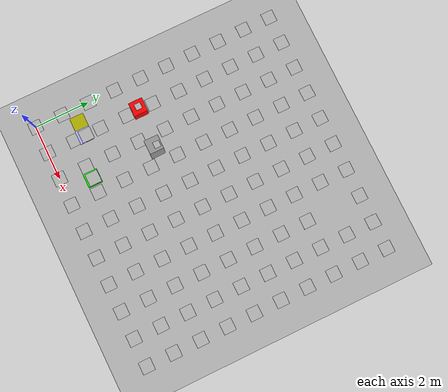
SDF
<sdf version="1.7">
 <world name="default">
  <light name="sun" type="directional">
   <pose>0 0 10 0 -0 0</pose>
   <diffuse>0.8 0.8 0.8 1</diffuse>
   <specular>0.2 0.2 0.2 1</specular>
   <attenuation>
    <range>1000</range>
    <constant>0.9</constant>
    <linear>0.01</linear>
    <quadratic>0.001</quadratic>
   </attenuation>
   <direction>-0.5 0.1 -0.9</direction>
   <spot><inner_angle>0</inner_angle><outer_angle>0</outer_angle><falloff>0</falloff></spot>
  </light>
  <model name="parquet_plane">
   <static>1</static>
   <link name="link">
    <collision name="collision"><geometry><box><size>200 200 0.02</size></box></geometry></collision>
    <visual name="visual">
     <cast_shadows>0</cast_shadows>
     <geometry><box><size>200 200 0.02</size></box></geometry>
     <material>
      <script>
       <uri>model://parquet_plane/materials/scripts</uri>
       <uri>model://parquet_plane/materials/textures</uri>
       <name>parquet</name>
      </script>
     </material>
    </visual>
   </link>
   <pose>0 0 -0.01 0 -0 0</pose>
  </model>
  <model name="aruco_2_99">
   <static>1</static>
   <link name="aruco_2_99_link">
    <visual name="visual_marker_2_0">
     <pose>0 9 0 0 -0 1.5708</pose>
     <cast_shadows>0</cast_shadows>
     <geometry><box><size>0.44 0.44 0.001</size></box></geometry>
     <material>
      <script>
       <uri>model://aruco_cmit_txt/materials/scripts</uri>
       <uri>model://aruco_cmit_txt/materials/textures</uri>
       <name>aruco/marker_2_0</name>
      </script>
     </material>
    </visual>
    <visual name="visual_marker_2_1">
     <pose>1 9 0 0 -0 1.5708</pose>
     <cast_shadows>0</cast_shadows>
     <geometry><box><size>0.44 0.44 0.001</size></box></geometry>
     <material>
      <script>
       <uri>model://aruco_cmit_txt/materials/scripts</uri>
       <uri>model://aruco_cmit_txt/materials/textures</uri>
       <name>aruco/marker_2_1</name>
      </script>
     </material>
    </visual>
    <visual name="visual_marker_2_2">
     <pose>2 9 0 0 -0 1.5708</pose>
     <cast_shadows>0</cast_shadows>
     <geometry><box><size>0.44 0.44 0.001</size></box></geometry>
     <material>
      <script>
       <uri>model://aruco_cmit_txt/materials/scripts</uri>
       <uri>model://aruco_cmit_txt/materials/textures</uri>
       <name>aruco/marker_2_2</name>
      </script>
     </material>
    </visual>
    <visual name="visual_marker_2_3">
     <pose>3 9 0 0 -0 1.5708</pose>
     <cast_shadows>0</cast_shadows>
     <geometry><box><size>0.44 0.44 0.001</size></box></geometry>
     <material>
      <script>
       <uri>model://aruco_cmit_txt/materials/scripts</uri>
       <uri>model://aruco_cmit_txt/materials/textures</uri>
       <name>aruco/marker_2_3</name>
      </script>
     </material>
    </visual>
    <visual name="visual_marker_2_4">
     <pose>4 9 0 0 -0 1.5708</pose>
     <cast_shadows>0</cast_shadows>
     <geometry><box><size>0.44 0.44 0.001</size></box></geometry>
     <material>
      <script>
       <uri>model://aruco_cmit_txt/materials/scripts</uri>
       <uri>model://aruco_cmit_txt/materials/textures</uri>
       <name>aruco/marker_2_4</name>
      </script>
     </material>
    </visual>
    <visual name="visual_marker_2_5">
     <pose>5 9 0 0 -0 1.5708</pose>
     <cast_shadows>0</cast_shadows>
     <geometry><box><size>0.44 0.44 0.001</size></box></geometry>
     <material>
      <script>
       <uri>model://aruco_cmit_txt/materials/scripts</uri>
       <uri>model://aruco_cmit_txt/materials/textures</uri>
       <name>aruco/marker_2_5</name>
      </script>
     </material>
    </visual>
    <visual name="visual_marker_2_6">
     <pose>6 9 0 0 -0 1.5708</pose>
     <cast_shadows>0</cast_shadows>
     <geometry><box><size>0.44 0.44 0.001</size></box></geometry>
     <material>
      <script>
       <uri>model://aruco_cmit_txt/materials/scripts</uri>
       <uri>model://aruco_cmit_txt/materials/textures</uri>
       <name>aruco/marker_2_6</name>
      </script>
     </material>
    </visual>
    <visual name="visual_marker_2_7">
     <pose>7 9 0 0 -0 1.5708</pose>
     <cast_shadows>0</cast_shadows>
     <geometry><box><size>0.44 0.44 0.001</size></box></geometry>
     <material>
      <script>
       <uri>model://aruco_cmit_txt/materials/scripts</uri>
       <uri>model://aruco_cmit_txt/materials/textures</uri>
       <name>aruco/marker_2_7</name>
      </script>
     </material>
    </visual>
    <visual name="visual_marker_2_8">
     <pose>8 9 0 0 -0 1.5708</pose>
     <cast_shadows>0</cast_shadows>
     <geometry><box><size>0.44 0.44 0.001</size></box></geometry>
     <material>
      <script>
       <uri>model://aruco_cmit_txt/materials/scripts</uri>
       <uri>model://aruco_cmit_txt/materials/textures</uri>
       <name>aruco/marker_2_8</name>
      </script>
     </material>
    </visual>
    <visual name="visual_marker_2_9">
     <pose>9 9 0 0 -0 1.5708</pose>
     <cast_shadows>0</cast_shadows>
     <geometry><box><size>0.44 0.44 0.001</size></box></geometry>
     <material>
      <script>
       <uri>model://aruco_cmit_txt/materials/scripts</uri>
       <uri>model://aruco_cmit_txt/materials/textures</uri>
       <name>aruco/marker_2_9</name>
      </script>
     </material>
    </visual>
    <visual name="visual_marker_2_10">
     <pose>0 8 0 0 -0 1.5708</pose>
     <cast_shadows>0</cast_shadows>
     <geometry><box><size>0.44 0.44 0.001</size></box></geometry>
     <material>
      <script>
       <uri>model://aruco_cmit_txt/materials/scripts</uri>
       <uri>model://aruco_cmit_txt/materials/textures</uri>
       <name>aruco/marker_2_10</name>
      </script>
     </material>
    </visual>
    <visual name="visual_marker_2_11">
     <pose>1 8 0 0 -0 1.5708</pose>
     <cast_shadows>0</cast_shadows>
     <geometry><box><size>0.44 0.44 0.001</size></box></geometry>
     <material>
      <script>
       <uri>model://aruco_cmit_txt/materials/scripts</uri>
       <uri>model://aruco_cmit_txt/materials/textures</uri>
       <name>aruco/marker_2_11</name>
      </script>
     </material>
    </visual>
    <visual name="visual_marker_2_12">
     <pose>2 8 0 0 -0 1.5708</pose>
     <cast_shadows>0</cast_shadows>
     <geometry><box><size>0.44 0.44 0.001</size></box></geometry>
     <material>
      <script>
       <uri>model://aruco_cmit_txt/materials/scripts</uri>
       <uri>model://aruco_cmit_txt/materials/textures</uri>
       <name>aruco/marker_2_12</name>
      </script>
     </material>
    </visual>
    <visual name="visual_marker_2_13">
     <pose>3 8 0 0 -0 1.5708</pose>
     <cast_shadows>0</cast_shadows>
     <geometry><box><size>0.44 0.44 0.001</size></box></geometry>
     <material>
      <script>
       <uri>model://aruco_cmit_txt/materials/scripts</uri>
       <uri>model://aruco_cmit_txt/materials/textures</uri>
       <name>aruco/marker_2_13</name>
      </script>
     </material>
    </visual>
    <visual name="visual_marker_2_14">
     <pose>4 8 0 0 -0 1.5708</pose>
     <cast_shadows>0</cast_shadows>
     <geometry><box><size>0.44 0.44 0.001</size></box></geometry>
     <material>
      <script>
       <uri>model://aruco_cmit_txt/materials/scripts</uri>
       <uri>model://aruco_cmit_txt/materials/textures</uri>
       <name>aruco/marker_2_14</name>
      </script>
     </material>
    </visual>
    <visual name="visual_marker_2_15">
     <pose>5 8 0 0 -0 1.5708</pose>
     <cast_shadows>0</cast_shadows>
     <geometry><box><size>0.44 0.44 0.001</size></box></geometry>
     <material>
      <script>
       <uri>model://aruco_cmit_txt/materials/scripts</uri>
       <uri>model://aruco_cmit_txt/materials/textures</uri>
       <name>aruco/marker_2_15</name>
      </script>
     </material>
    </visual>
    <visual name="visual_marker_2_16">
     <pose>6 8 0 0 -0 1.5708</pose>
     <cast_shadows>0</cast_shadows>
     <geometry><box><size>0.44 0.44 0.001</size></box></geometry>
     <material>
      <script>
       <uri>model://aruco_cmit_txt/materials/scripts</uri>
       <uri>model://aruco_cmit_txt/materials/textures</uri>
       <name>aruco/marker_2_16</name>
      </script>
     </material>
    </visual>
    <visual name="visual_marker_2_18">
     <pose>8 8 0 0 -0 1.5708</pose>
     <cast_shadows>0</cast_shadows>
     <geometry><box><size>0.44 0.44 0.001</size></box></geometry>
     <material>
      <script>
       <uri>model://aruco_cmit_txt/materials/scripts</uri>
       <uri>model://aruco_cmit_txt/materials/textures</uri>
       <name>aruco/marker_2_18</name>
      </script>
     </material>
    </visual>
    <visual name="visual_marker_2_19">
     <pose>9 8 0 0 -0 1.5708</pose>
     <cast_shadows>0</cast_shadows>
     <geometry><box><size>0.44 0.44 0.001</size></box></geometry>
     <material>
      <script>
       <uri>model://aruco_cmit_txt/materials/scripts</uri>
       <uri>model://aruco_cmit_txt/materials/textures</uri>
       <name>aruco/marker_2_19</name>
      </script>
     </material>
    </visual>
    <visual name="visual_marker_2_20">
     <pose>0 7 0 0 -0 1.5708</pose>
     <cast_shadows>0</cast_shadows>
     <geometry><box><size>0.44 0.44 0.001</size></box></geometry>
     <material>
      <script>
       <uri>model://aruco_cmit_txt/materials/scripts</uri>
       <uri>model://aruco_cmit_txt/materials/textures</uri>
       <name>aruco/marker_2_20</name>
      </script>
     </material>
    </visual>
    <visual name="visual_marker_2_21">
     <pose>1 7 0 0 -0 1.5708</pose>
     <cast_shadows>0</cast_shadows>
     <geometry><box><size>0.44 0.44 0.001</size></box></geometry>
     <material>
      <script>
       <uri>model://aruco_cmit_txt/materials/scripts</uri>
       <uri>model://aruco_cmit_txt/materials/textures</uri>
       <name>aruco/marker_2_21</name>
      </script>
     </material>
    </visual>
    <visual name="visual_marker_2_22">
     <pose>2 7 0 0 -0 1.5708</pose>
     <cast_shadows>0</cast_shadows>
     <geometry><box><size>0.44 0.44 0.001</size></box></geometry>
     <material>
      <script>
       <uri>model://aruco_cmit_txt/materials/scripts</uri>
       <uri>model://aruco_cmit_txt/materials/textures</uri>
       <name>aruco/marker_2_22</name>
      </script>
     </material>
    </visual>
    <visual name="visual_marker_2_23">
     <pose>3 7 0 0 -0 1.5708</pose>
     <cast_shadows>0</cast_shadows>
     <geometry><box><size>0.44 0.44 0.001</size></box></geometry>
     <material>
      <script>
       <uri>model://aruco_cmit_txt/materials/scripts</uri>
       <uri>model://aruco_cmit_txt/materials/textures</uri>
       <name>aruco/marker_2_23</name>
      </script>
     </material>
    </visual>
    <visual name="visual_marker_2_24">
     <pose>4 7 0 0 -0 1.5708</pose>
     <cast_shadows>0</cast_shadows>
     <geometry><box><size>0.44 0.44 0.001</size></box></geometry>
     <material>
      <script>
       <uri>model://aruco_cmit_txt/materials/scripts</uri>
       <uri>model://aruco_cmit_txt/materials/textures</uri>
       <name>aruco/marker_2_24</name>
      </script>
     </material>
    </visual>
    <visual name="visual_marker_2_25">
     <pose>5 7 0 0 -0 1.5708</pose>
     <cast_shadows>0</cast_shadows>
     <geometry><box><size>0.44 0.44 0.001</size></box></geometry>
     <material>
      <script>
       <uri>model://aruco_cmit_txt/materials/scripts</uri>
       <uri>model://aruco_cmit_txt/materials/textures</uri>
       <name>aruco/marker_2_25</name>
      </script>
     </material>
    </visual>
    <visual name="visual_marker_2_26">
     <pose>6 7 0 0 -0 1.5708</pose>
     <cast_shadows>0</cast_shadows>
     <geometry><box><size>0.44 0.44 0.001</size></box></geometry>
     <material>
      <script>
       <uri>model://aruco_cmit_txt/materials/scripts</uri>
       <uri>model://aruco_cmit_txt/materials/textures</uri>
       <name>aruco/marker_2_26</name>
      </script>
     </material>
    </visual>
    <visual name="visual_marker_2_27">
     <pose>7 7 0 0 -0 1.5708</pose>
     <cast_shadows>0</cast_shadows>
     <geometry><box><size>0.44 0.44 0.001</size></box></geometry>
     <material>
      <script>
       <uri>model://aruco_cmit_txt/materials/scripts</uri>
       <uri>model://aruco_cmit_txt/materials/textures</uri>
       <name>aruco/marker_2_27</name>
      </script>
     </material>
    </visual>
    <visual name="visual_marker_2_28">
     <pose>8 7 0 0 -0 1.5708</pose>
     <cast_shadows>0</cast_shadows>
     <geometry><box><size>0.44 0.44 0.001</size></box></geometry>
     <material>
      <script>
       <uri>model://aruco_cmit_txt/materials/scripts</uri>
       <uri>model://aruco_cmit_txt/materials/textures</uri>
       <name>aruco/marker_2_28</name>
      </script>
     </material>
    </visual>
    <visual name="visual_marker_2_29">
     <pose>9 7 0 0 -0 1.5708</pose>
     <cast_shadows>0</cast_shadows>
     <geometry><box><size>0.44 0.44 0.001</size></box></geometry>
     <material>
      <script>
       <uri>model://aruco_cmit_txt/materials/scripts</uri>
       <uri>model://aruco_cmit_txt/materials/textures</uri>
       <name>aruco/marker_2_29</name>
      </script>
     </material>
    </visual>
    <visual name="visual_marker_2_30">
     <pose>0 6 0 0 -0 1.5708</pose>
     <cast_shadows>0</cast_shadows>
     <geometry><box><size>0.44 0.44 0.001</size></box></geometry>
     <material>
      <script>
       <uri>model://aruco_cmit_txt/materials/scripts</uri>
       <uri>model://aruco_cmit_txt/materials/textures</uri>
       <name>aruco/marker_2_30</name>
      </script>
     </material>
    </visual>
    <visual name="visual_marker_2_31">
     <pose>1 6 0 0 -0 1.5708</pose>
     <cast_shadows>0</cast_shadows>
     <geometry><box><size>0.44 0.44 0.001</size></box></geometry>
     <material>
      <script>
       <uri>model://aruco_cmit_txt/materials/scripts</uri>
       <uri>model://aruco_cmit_txt/materials/textures</uri>
       <name>aruco/marker_2_31</name>
      </script>
     </material>
    </visual>
    <visual name="visual_marker_2_32">
     <pose>2 6 0 0 -0 1.5708</pose>
     <cast_shadows>0</cast_shadows>
     <geometry><box><size>0.44 0.44 0.001</size></box></geometry>
     <material>
      <script>
       <uri>model://aruco_cmit_txt/materials/scripts</uri>
       <uri>model://aruco_cmit_txt/materials/textures</uri>
       <name>aruco/marker_2_32</name>
      </script>
     </material>
    </visual>
    <visual name="visual_marker_2_33">
     <pose>3 6 0 0 -0 1.5708</pose>
     <cast_shadows>0</cast_shadows>
     <geometry><box><size>0.44 0.44 0.001</size></box></geometry>
     <material>
      <script>
       <uri>model://aruco_cmit_txt/materials/scripts</uri>
       <uri>model://aruco_cmit_txt/materials/textures</uri>
       <name>aruco/marker_2_33</name>
      </script>
     </material>
    </visual>
    <visual name="visual_marker_2_34">
     <pose>4 6 0 0 -0 1.5708</pose>
     <cast_shadows>0</cast_shadows>
     <geometry><box><size>0.44 0.44 0.001</size></box></geometry>
     <material>
      <script>
       <uri>model://aruco_cmit_txt/materials/scripts</uri>
       <uri>model://aruco_cmit_txt/materials/textures</uri>
       <name>aruco/marker_2_34</name>
      </script>
     </material>
    </visual>
    <visual name="visual_marker_2_35">
     <pose>5 6 0 0 -0 1.5708</pose>
     <cast_shadows>0</cast_shadows>
     <geometry><box><size>0.44 0.44 0.001</size></box></geometry>
     <material>
      <script>
       <uri>model://aruco_cmit_txt/materials/scripts</uri>
       <uri>model://aruco_cmit_txt/materials/textures</uri>
       <name>aruco/marker_2_35</name>
      </script>
     </material>
    </visual>
    <visual name="visual_marker_2_36">
     <pose>6 6 0 0 -0 1.5708</pose>
     <cast_shadows>0</cast_shadows>
     <geometry><box><size>0.44 0.44 0.001</size></box></geometry>
     <material>
      <script>
       <uri>model://aruco_cmit_txt/materials/scripts</uri>
       <uri>model://aruco_cmit_txt/materials/textures</uri>
       <name>aruco/marker_2_36</name>
      </script>
     </material>
    </visual>
    <visual name="visual_marker_2_37">
     <pose>7 6 0 0 -0 1.5708</pose>
     <cast_shadows>0</cast_shadows>
     <geometry><box><size>0.44 0.44 0.001</size></box></geometry>
     <material>
      <script>
       <uri>model://aruco_cmit_txt/materials/scripts</uri>
       <uri>model://aruco_cmit_txt/materials/textures</uri>
       <name>aruco/marker_2_37</name>
      </script>
     </material>
    </visual>
    <visual name="visual_marker_2_38">
     <pose>8 6 0 0 -0 1.5708</pose>
     <cast_shadows>0</cast_shadows>
     <geometry><box><size>0.44 0.44 0.001</size></box></geometry>
     <material>
      <script>
       <uri>model://aruco_cmit_txt/materials/scripts</uri>
       <uri>model://aruco_cmit_txt/materials/textures</uri>
       <name>aruco/marker_2_38</name>
      </script>
     </material>
    </visual>
    <visual name="visual_marker_2_39">
     <pose>9 6 0 0 -0 1.5708</pose>
     <cast_shadows>0</cast_shadows>
     <geometry><box><size>0.44 0.44 0.001</size></box></geometry>
     <material>
      <script>
       <uri>model://aruco_cmit_txt/materials/scripts</uri>
       <uri>model://aruco_cmit_txt/materials/textures</uri>
       <name>aruco/marker_2_39</name>
      </script>
     </material>
    </visual>
    <visual name="visual_marker_2_40">
     <pose>0 5 0 0 -0 1.5708</pose>
     <cast_shadows>0</cast_shadows>
     <geometry><box><size>0.44 0.44 0.001</size></box></geometry>
     <material>
      <script>
       <uri>model://aruco_cmit_txt/materials/scripts</uri>
       <uri>model://aruco_cmit_txt/materials/textures</uri>
       <name>aruco/marker_2_40</name>
      </script>
     </material>
    </visual>
    <visual name="visual_marker_2_41">
     <pose>1 5 0 0 -0 1.5708</pose>
     <cast_shadows>0</cast_shadows>
     <geometry><box><size>0.44 0.44 0.001</size></box></geometry>
     <material>
      <script>
       <uri>model://aruco_cmit_txt/materials/scripts</uri>
       <uri>model://aruco_cmit_txt/materials/textures</uri>
       <name>aruco/marker_2_41</name>
      </script>
     </material>
    </visual>
    <visual name="visual_marker_2_42">
     <pose>2 5 0 0 -0 1.5708</pose>
     <cast_shadows>0</cast_shadows>
     <geometry><box><size>0.44 0.44 0.001</size></box></geometry>
     <material>
      <script>
       <uri>model://aruco_cmit_txt/materials/scripts</uri>
       <uri>model://aruco_cmit_txt/materials/textures</uri>
       <name>aruco/marker_2_42</name>
      </script>
     </material>
    </visual>
    <visual name="visual_marker_2_43">
     <pose>3 5 0 0 -0 1.5708</pose>
     <cast_shadows>0</cast_shadows>
     <geometry><box><size>0.44 0.44 0.001</size></box></geometry>
     <material>
      <script>
       <uri>model://aruco_cmit_txt/materials/scripts</uri>
       <uri>model://aruco_cmit_txt/materials/textures</uri>
       <name>aruco/marker_2_43</name>
      </script>
     </material>
    </visual>
    <visual name="visual_marker_2_44">
     <pose>4 5 0 0 -0 1.5708</pose>
     <cast_shadows>0</cast_shadows>
     <geometry><box><size>0.44 0.44 0.001</size></box></geometry>
     <material>
      <script>
       <uri>model://aruco_cmit_txt/materials/scripts</uri>
       <uri>model://aruco_cmit_txt/materials/textures</uri>
       <name>aruco/marker_2_44</name>
      </script>
     </material>
    </visual>
    <visual name="visual_marker_2_45">
     <pose>5 5 0 0 -0 1.5708</pose>
     <cast_shadows>0</cast_shadows>
     <geometry><box><size>0.44 0.44 0.001</size></box></geometry>
     <material>
      <script>
       <uri>model://aruco_cmit_txt/materials/scripts</uri>
       <uri>model://aruco_cmit_txt/materials/textures</uri>
       <name>aruco/marker_2_45</name>
      </script>
     </material>
    </visual>
    <visual name="visual_marker_2_46">
     <pose>6 5 0 0 -0 1.5708</pose>
     <cast_shadows>0</cast_shadows>
     <geometry><box><size>0.44 0.44 0.001</size></box></geometry>
     <material>
      <script>
       <uri>model://aruco_cmit_txt/materials/scripts</uri>
       <uri>model://aruco_cmit_txt/materials/textures</uri>
       <name>aruco/marker_2_46</name>
      </script>
     </material>
    </visual>
    <visual name="visual_marker_2_47">
     <pose>7 5 0 0 -0 1.5708</pose>
     <cast_shadows>0</cast_shadows>
     <geometry><box><size>0.44 0.44 0.001</size></box></geometry>
     <material>
      <script>
       <uri>model://aruco_cmit_txt/materials/scripts</uri>
       <uri>model://aruco_cmit_txt/materials/textures</uri>
       <name>aruco/marker_2_47</name>
      </script>
     </material>
    </visual>
    <visual name="visual_marker_2_48">
     <pose>8 5 0 0 -0 1.5708</pose>
     <cast_shadows>0</cast_shadows>
     <geometry><box><size>0.44 0.44 0.001</size></box></geometry>
     <material>
      <script>
       <uri>model://aruco_cmit_txt/materials/scripts</uri>
       <uri>model://aruco_cmit_txt/materials/textures</uri>
       <name>aruco/marker_2_48</name>
      </script>
     </material>
    </visual>
    <visual name="visual_marker_2_49">
     <pose>9 5 0 0 -0 1.5708</pose>
     <cast_shadows>0</cast_shadows>
     <geometry><box><size>0.44 0.44 0.001</size></box></geometry>
     <material>
      <script>
       <uri>model://aruco_cmit_txt/materials/scripts</uri>
       <uri>model://aruco_cmit_txt/materials/textures</uri>
       <name>aruco/marker_2_49</name>
      </script>
     </material>
    </visual>
    <visual name="visual_marker_2_50">
     <pose>0 4 0 0 -0 1.5708</pose>
     <cast_shadows>0</cast_shadows>
     <geometry><box><size>0.44 0.44 0.001</size></box></geometry>
     <material>
      <script>
       <uri>model://aruco_cmit_txt/materials/scripts</uri>
       <uri>model://aruco_cmit_txt/materials/textures</uri>
       <name>aruco/marker_2_50</name>
      </script>
     </material>
    </visual>
    <visual name="visual_marker_2_51">
     <pose>1 4 0 0 -0 1.5708</pose>
     <cast_shadows>0</cast_shadows>
     <geometry><box><size>0.44 0.44 0.001</size></box></geometry>
     <material>
      <script>
       <uri>model://aruco_cmit_txt/materials/scripts</uri>
       <uri>model://aruco_cmit_txt/materials/textures</uri>
       <name>aruco/marker_2_51</name>
      </script>
     </material>
    </visual>
    <visual name="visual_marker_2_52">
     <pose>2 4 0 0 -0 1.5708</pose>
     <cast_shadows>0</cast_shadows>
     <geometry><box><size>0.44 0.44 0.001</size></box></geometry>
     <material>
      <script>
       <uri>model://aruco_cmit_txt/materials/scripts</uri>
       <uri>model://aruco_cmit_txt/materials/textures</uri>
       <name>aruco/marker_2_52</name>
      </script>
     </material>
    </visual>
    <visual name="visual_marker_2_53">
     <pose>3 4 0 0 -0 1.5708</pose>
     <cast_shadows>0</cast_shadows>
     <geometry><box><size>0.44 0.44 0.001</size></box></geometry>
     <material>
      <script>
       <uri>model://aruco_cmit_txt/materials/scripts</uri>
       <uri>model://aruco_cmit_txt/materials/textures</uri>
       <name>aruco/marker_2_53</name>
      </script>
     </material>
    </visual>
    <visual name="visual_marker_2_54">
     <pose>4 4 0 0 -0 1.5708</pose>
     <cast_shadows>0</cast_shadows>
     <geometry><box><size>0.44 0.44 0.001</size></box></geometry>
     <material>
      <script>
       <uri>model://aruco_cmit_txt/materials/scripts</uri>
       <uri>model://aruco_cmit_txt/materials/textures</uri>
       <name>aruco/marker_2_54</name>
      </script>
     </material>
    </visual>
    <visual name="visual_marker_2_55">
     <pose>5 4 0 0 -0 1.5708</pose>
     <cast_shadows>0</cast_shadows>
     <geometry><box><size>0.44 0.44 0.001</size></box></geometry>
     <material>
      <script>
       <uri>model://aruco_cmit_txt/materials/scripts</uri>
       <uri>model://aruco_cmit_txt/materials/textures</uri>
       <name>aruco/marker_2_55</name>
      </script>
     </material>
    </visual>
    <visual name="visual_marker_2_56">
     <pose>6 4 0 0 -0 1.5708</pose>
     <cast_shadows>0</cast_shadows>
     <geometry><box><size>0.44 0.44 0.001</size></box></geometry>
     <material>
      <script>
       <uri>model://aruco_cmit_txt/materials/scripts</uri>
       <uri>model://aruco_cmit_txt/materials/textures</uri>
       <name>aruco/marker_2_56</name>
      </script>
     </material>
    </visual>
    <visual name="visual_marker_2_57">
     <pose>7 4 0 0 -0 1.5708</pose>
     <cast_shadows>0</cast_shadows>
     <geometry><box><size>0.44 0.44 0.001</size></box></geometry>
     <material>
      <script>
       <uri>model://aruco_cmit_txt/materials/scripts</uri>
       <uri>model://aruco_cmit_txt/materials/textures</uri>
       <name>aruco/marker_2_57</name>
      </script>
     </material>
    </visual>
    <visual name="visual_marker_2_58">
     <pose>8 4 0 0 -0 1.5708</pose>
     <cast_shadows>0</cast_shadows>
     <geometry><box><size>0.44 0.44 0.001</size></box></geometry>
     <material>
      <script>
       <uri>model://aruco_cmit_txt/materials/scripts</uri>
       <uri>model://aruco_cmit_txt/materials/textures</uri>
       <name>aruco/marker_2_58</name>
      </script>
     </material>
    </visual>
    <visual name="visual_marker_2_59">
     <pose>9 4 0 0 -0 1.5708</pose>
     <cast_shadows>0</cast_shadows>
     <geometry><box><size>0.44 0.44 0.001</size></box></geometry>
     <material>
      <script>
       <uri>model://aruco_cmit_txt/materials/scripts</uri>
       <uri>model://aruco_cmit_txt/materials/textures</uri>
       <name>aruco/marker_2_59</name>
      </script>
     </material>
    </visual>
    <visual name="visual_marker_2_60">
     <pose>0 3 0 0 -0 1.5708</pose>
     <cast_shadows>0</cast_shadows>
     <geometry><box><size>0.44 0.44 0.001</size></box></geometry>
     <material>
      <script>
       <uri>model://aruco_cmit_txt/materials/scripts</uri>
       <uri>model://aruco_cmit_txt/materials/textures</uri>
       <name>aruco/marker_2_60</name>
      </script>
     </material>
    </visual>
    <visual name="visual_marker_2_61">
     <pose>1 3 0 0 -0 1.5708</pose>
     <cast_shadows>0</cast_shadows>
     <geometry><box><size>0.44 0.44 0.001</size></box></geometry>
     <material>
      <script>
       <uri>model://aruco_cmit_txt/materials/scripts</uri>
       <uri>model://aruco_cmit_txt/materials/textures</uri>
       <name>aruco/marker_2_61</name>
      </script>
     </material>
    </visual>
    <visual name="visual_marker_2_62">
     <pose>2 3 0 0 -0 1.5708</pose>
     <cast_shadows>0</cast_shadows>
     <geometry><box><size>0.44 0.44 0.001</size></box></geometry>
     <material>
      <script>
       <uri>model://aruco_cmit_txt/materials/scripts</uri>
       <uri>model://aruco_cmit_txt/materials/textures</uri>
       <name>aruco/marker_2_62</name>
      </script>
     </material>
    </visual>
    <visual name="visual_marker_2_63">
     <pose>3 3 0 0 -0 1.5708</pose>
     <cast_shadows>0</cast_shadows>
     <geometry><box><size>0.44 0.44 0.001</size></box></geometry>
     <material>
      <script>
       <uri>model://aruco_cmit_txt/materials/scripts</uri>
       <uri>model://aruco_cmit_txt/materials/textures</uri>
       <name>aruco/marker_2_63</name>
      </script>
     </material>
    </visual>
    <visual name="visual_marker_2_64">
     <pose>4 3 0 0 -0 1.5708</pose>
     <cast_shadows>0</cast_shadows>
     <geometry><box><size>0.44 0.44 0.001</size></box></geometry>
     <material>
      <script>
       <uri>model://aruco_cmit_txt/materials/scripts</uri>
       <uri>model://aruco_cmit_txt/materials/textures</uri>
       <name>aruco/marker_2_64</name>
      </script>
     </material>
    </visual>
    <visual name="visual_marker_2_65">
     <pose>5 3 0 0 -0 1.5708</pose>
     <cast_shadows>0</cast_shadows>
     <geometry><box><size>0.44 0.44 0.001</size></box></geometry>
     <material>
      <script>
       <uri>model://aruco_cmit_txt/materials/scripts</uri>
       <uri>model://aruco_cmit_txt/materials/textures</uri>
       <name>aruco/marker_2_65</name>
      </script>
     </material>
    </visual>
    <visual name="visual_marker_2_66">
     <pose>6 3 0 0 -0 1.5708</pose>
     <cast_shadows>0</cast_shadows>
     <geometry><box><size>0.44 0.44 0.001</size></box></geometry>
     <material>
      <script>
       <uri>model://aruco_cmit_txt/materials/scripts</uri>
       <uri>model://aruco_cmit_txt/materials/textures</uri>
       <name>aruco/marker_2_66</name>
      </script>
     </material>
    </visual>
    <visual name="visual_marker_2_67">
     <pose>7 3 0 0 -0 1.5708</pose>
     <cast_shadows>0</cast_shadows>
     <geometry><box><size>0.44 0.44 0.001</size></box></geometry>
     <material>
      <script>
       <uri>model://aruco_cmit_txt/materials/scripts</uri>
       <uri>model://aruco_cmit_txt/materials/textures</uri>
       <name>aruco/marker_2_67</name>
      </script>
     </material>
    </visual>
    <visual name="visual_marker_2_68">
     <pose>8 3 0 0 -0 1.5708</pose>
     <cast_shadows>0</cast_shadows>
     <geometry><box><size>0.44 0.44 0.001</size></box></geometry>
     <material>
      <script>
       <uri>model://aruco_cmit_txt/materials/scripts</uri>
       <uri>model://aruco_cmit_txt/materials/textures</uri>
       <name>aruco/marker_2_68</name>
      </script>
     </material>
    </visual>
    <visual name="visual_marker_2_69">
     <pose>9 3 0 0 -0 1.5708</pose>
     <cast_shadows>0</cast_shadows>
     <geometry><box><size>0.44 0.44 0.001</size></box></geometry>
     <material>
      <script>
       <uri>model://aruco_cmit_txt/materials/scripts</uri>
       <uri>model://aruco_cmit_txt/materials/textures</uri>
       <name>aruco/marker_2_69</name>
      </script>
     </material>
    </visual>
    <visual name="visual_marker_2_70">
     <pose>0 2 0 0 -0 1.5708</pose>
     <cast_shadows>0</cast_shadows>
     <geometry><box><size>0.44 0.44 0.001</size></box></geometry>
     <material>
      <script>
       <uri>model://aruco_cmit_txt/materials/scripts</uri>
       <uri>model://aruco_cmit_txt/materials/textures</uri>
       <name>aruco/marker_2_70</name>
      </script>
     </material>
    </visual>
    <visual name="visual_marker_2_71">
     <pose>1 2 0 0 -0 1.5708</pose>
     <cast_shadows>0</cast_shadows>
     <geometry><box><size>0.44 0.44 0.001</size></box></geometry>
     <material>
      <script>
       <uri>model://aruco_cmit_txt/materials/scripts</uri>
       <uri>model://aruco_cmit_txt/materials/textures</uri>
       <name>aruco/marker_2_71</name>
      </script>
     </material>
    </visual>
    <visual name="visual_marker_2_72">
     <pose>2 2 0 0 -0 1.5708</pose>
     <cast_shadows>0</cast_shadows>
     <geometry><box><size>0.44 0.44 0.001</size></box></geometry>
     <material>
      <script>
       <uri>model://aruco_cmit_txt/materials/scripts</uri>
       <uri>model://aruco_cmit_txt/materials/textures</uri>
       <name>aruco/marker_2_72</name>
      </script>
     </material>
    </visual>
    <visual name="visual_marker_2_73">
     <pose>3 2 0 0 -0 1.5708</pose>
     <cast_shadows>0</cast_shadows>
     <geometry><box><size>0.44 0.44 0.001</size></box></geometry>
     <material>
      <script>
       <uri>model://aruco_cmit_txt/materials/scripts</uri>
       <uri>model://aruco_cmit_txt/materials/textures</uri>
       <name>aruco/marker_2_73</name>
      </script>
     </material>
    </visual>
    <visual name="visual_marker_2_74">
     <pose>4 2 0 0 -0 1.5708</pose>
     <cast_shadows>0</cast_shadows>
     <geometry><box><size>0.44 0.44 0.001</size></box></geometry>
     <material>
      <script>
       <uri>model://aruco_cmit_txt/materials/scripts</uri>
       <uri>model://aruco_cmit_txt/materials/textures</uri>
       <name>aruco/marker_2_74</name>
      </script>
     </material>
    </visual>
    <visual name="visual_marker_2_75">
     <pose>5 2 0 0 -0 1.5708</pose>
     <cast_shadows>0</cast_shadows>
     <geometry><box><size>0.44 0.44 0.001</size></box></geometry>
     <material>
      <script>
       <uri>model://aruco_cmit_txt/materials/scripts</uri>
       <uri>model://aruco_cmit_txt/materials/textures</uri>
       <name>aruco/marker_2_75</name>
      </script>
     </material>
    </visual>
    <visual name="visual_marker_2_76">
     <pose>6 2 0 0 -0 1.5708</pose>
     <cast_shadows>0</cast_shadows>
     <geometry><box><size>0.44 0.44 0.001</size></box></geometry>
     <material>
      <script>
       <uri>model://aruco_cmit_txt/materials/scripts</uri>
       <uri>model://aruco_cmit_txt/materials/textures</uri>
       <name>aruco/marker_2_76</name>
      </script>
     </material>
    </visual>
    <visual name="visual_marker_2_77">
     <pose>7 2 0 0 -0 1.5708</pose>
     <cast_shadows>0</cast_shadows>
     <geometry><box><size>0.44 0.44 0.001</size></box></geometry>
     <material>
      <script>
       <uri>model://aruco_cmit_txt/materials/scripts</uri>
       <uri>model://aruco_cmit_txt/materials/textures</uri>
       <name>aruco/marker_2_77</name>
      </script>
     </material>
    </visual>
    <visual name="visual_marker_2_78">
     <pose>8 2 0 0 -0 1.5708</pose>
     <cast_shadows>0</cast_shadows>
     <geometry><box><size>0.44 0.44 0.001</size></box></geometry>
     <material>
      <script>
       <uri>model://aruco_cmit_txt/materials/scripts</uri>
       <uri>model://aruco_cmit_txt/materials/textures</uri>
       <name>aruco/marker_2_78</name>
      </script>
     </material>
    </visual>
    <visual name="visual_marker_2_79">
     <pose>9 2 0 0 -0 1.5708</pose>
     <cast_shadows>0</cast_shadows>
     <geometry><box><size>0.44 0.44 0.001</size></box></geometry>
     <material>
      <script>
       <uri>model://aruco_cmit_txt/materials/scripts</uri>
       <uri>model://aruco_cmit_txt/materials/textures</uri>
       <name>aruco/marker_2_79</name>
      </script>
     </material>
    </visual>
    <visual name="visual_marker_2_80">
     <pose>0 1 0 0 -0 1.5708</pose>
     <cast_shadows>0</cast_shadows>
     <geometry><box><size>0.44 0.44 0.001</size></box></geometry>
     <material>
      <script>
       <uri>model://aruco_cmit_txt/materials/scripts</uri>
       <uri>model://aruco_cmit_txt/materials/textures</uri>
       <name>aruco/marker_2_80</name>
      </script>
     </material>
    </visual>
    <visual name="visual_marker_2_81">
     <pose>1 1 0 0 -0 1.5708</pose>
     <cast_shadows>0</cast_shadows>
     <geometry><box><size>0.44 0.44 0.001</size></box></geometry>
     <material>
      <script>
       <uri>model://aruco_cmit_txt/materials/scripts</uri>
       <uri>model://aruco_cmit_txt/materials/textures</uri>
       <name>aruco/marker_2_81</name>
      </script>
     </material>
    </visual>
    <visual name="visual_marker_2_82">
     <pose>2 1 0 0 -0 1.5708</pose>
     <cast_shadows>0</cast_shadows>
     <geometry><box><size>0.44 0.44 0.001</size></box></geometry>
     <material>
      <script>
       <uri>model://aruco_cmit_txt/materials/scripts</uri>
       <uri>model://aruco_cmit_txt/materials/textures</uri>
       <name>aruco/marker_2_82</name>
      </script>
     </material>
    </visual>
    <visual name="visual_marker_2_83">
     <pose>3 1 0 0 -0 1.5708</pose>
     <cast_shadows>0</cast_shadows>
     <geometry><box><size>0.44 0.44 0.001</size></box></geometry>
     <material>
      <script>
       <uri>model://aruco_cmit_txt/materials/scripts</uri>
       <uri>model://aruco_cmit_txt/materials/textures</uri>
       <name>aruco/marker_2_83</name>
      </script>
     </material>
    </visual>
    <visual name="visual_marker_2_84">
     <pose>4 1 0 0 -0 1.5708</pose>
     <cast_shadows>0</cast_shadows>
     <geometry><box><size>0.44 0.44 0.001</size></box></geometry>
     <material>
      <script>
       <uri>model://aruco_cmit_txt/materials/scripts</uri>
       <uri>model://aruco_cmit_txt/materials/textures</uri>
       <name>aruco/marker_2_84</name>
      </script>
     </material>
    </visual>
    <visual name="visual_marker_2_85">
     <pose>5 1 0 0 -0 1.5708</pose>
     <cast_shadows>0</cast_shadows>
     <geometry><box><size>0.44 0.44 0.001</size></box></geometry>
     <material>
      <script>
       <uri>model://aruco_cmit_txt/materials/scripts</uri>
       <uri>model://aruco_cmit_txt/materials/textures</uri>
       <name>aruco/marker_2_85</name>
      </script>
     </material>
    </visual>
    <visual name="visual_marker_2_86">
     <pose>6 1 0 0 -0 1.5708</pose>
     <cast_shadows>0</cast_shadows>
     <geometry><box><size>0.44 0.44 0.001</size></box></geometry>
     <material>
      <script>
       <uri>model://aruco_cmit_txt/materials/scripts</uri>
       <uri>model://aruco_cmit_txt/materials/textures</uri>
       <name>aruco/marker_2_86</name>
      </script>
     </material>
    </visual>
    <visual name="visual_marker_2_87">
     <pose>7 1 0 0 -0 1.5708</pose>
     <cast_shadows>0</cast_shadows>
     <geometry><box><size>0.44 0.44 0.001</size></box></geometry>
     <material>
      <script>
       <uri>model://aruco_cmit_txt/materials/scripts</uri>
       <uri>model://aruco_cmit_txt/materials/textures</uri>
       <name>aruco/marker_2_87</name>
      </script>
     </material>
    </visual>
    <visual name="visual_marker_2_88">
     <pose>8 1 0 0 -0 1.5708</pose>
     <cast_shadows>0</cast_shadows>
     <geometry><box><size>0.44 0.44 0.001</size></box></geometry>
     <material>
      <script>
       <uri>model://aruco_cmit_txt/materials/scripts</uri>
       <uri>model://aruco_cmit_txt/materials/textures</uri>
       <name>aruco/marker_2_88</name>
      </script>
     </material>
    </visual>
    <visual name="visual_marker_2_89">
     <pose>9 1 0 0 -0 1.5708</pose>
     <cast_shadows>0</cast_shadows>
     <geometry><box><size>0.44 0.44 0.001</size></box></geometry>
     <material>
      <script>
       <uri>model://aruco_cmit_txt/materials/scripts</uri>
       <uri>model://aruco_cmit_txt/materials/textures</uri>
       <name>aruco/marker_2_89</name>
      </script>
     </material>
    </visual>
    <visual name="visual_marker_2_90">
     <pose>0 0 0 0 -0 1.5708</pose>
     <cast_shadows>0</cast_shadows>
     <geometry><box><size>0.44 0.44 0.001</size></box></geometry>
     <material>
      <script>
       <uri>model://aruco_cmit_txt/materials/scripts</uri>
       <uri>model://aruco_cmit_txt/materials/textures</uri>
       <name>aruco/marker_2_90</name>
      </script>
     </material>
    </visual>
    <visual name="visual_marker_2_91">
     <pose>1 0 0 0 -0 1.5708</pose>
     <cast_shadows>0</cast_shadows>
     <geometry><box><size>0.44 0.44 0.001</size></box></geometry>
     <material>
      <script>
       <uri>model://aruco_cmit_txt/materials/scripts</uri>
       <uri>model://aruco_cmit_txt/materials/textures</uri>
       <name>aruco/marker_2_91</name>
      </script>
     </material>
    </visual>
    <visual name="visual_marker_2_92">
     <pose>2 0 0 0 -0 1.5708</pose>
     <cast_shadows>0</cast_shadows>
     <geometry><box><size>0.44 0.44 0.001</size></box></geometry>
     <material>
      <script>
       <uri>model://aruco_cmit_txt/materials/scripts</uri>
       <uri>model://aruco_cmit_txt/materials/textures</uri>
       <name>aruco/marker_2_92</name>
      </script>
     </material>
    </visual>
    <visual name="visual_marker_2_93">
     <pose>3 0 0 0 -0 1.5708</pose>
     <cast_shadows>0</cast_shadows>
     <geometry><box><size>0.44 0.44 0.001</size></box></geometry>
     <material>
      <script>
       <uri>model://aruco_cmit_txt/materials/scripts</uri>
       <uri>model://aruco_cmit_txt/materials/textures</uri>
       <name>aruco/marker_2_93</name>
      </script>
     </material>
    </visual>
    <visual name="visual_marker_2_94">
     <pose>4 0 0 0 -0 1.5708</pose>
     <cast_shadows>0</cast_shadows>
     <geometry><box><size>0.44 0.44 0.001</size></box></geometry>
     <material>
      <script>
       <uri>model://aruco_cmit_txt/materials/scripts</uri>
       <uri>model://aruco_cmit_txt/materials/textures</uri>
       <name>aruco/marker_2_94</name>
      </script>
     </material>
    </visual>
    <visual name="visual_marker_2_95">
     <pose>5 0 0 0 -0 1.5708</pose>
     <cast_shadows>0</cast_shadows>
     <geometry><box><size>0.44 0.44 0.001</size></box></geometry>
     <material>
      <script>
       <uri>model://aruco_cmit_txt/materials/scripts</uri>
       <uri>model://aruco_cmit_txt/materials/textures</uri>
       <name>aruco/marker_2_95</name>
      </script>
     </material>
    </visual>
    <visual name="visual_marker_2_96">
     <pose>6 0 0 0 -0 1.5708</pose>
     <cast_shadows>0</cast_shadows>
     <geometry><box><size>0.44 0.44 0.001</size></box></geometry>
     <material>
      <script>
       <uri>model://aruco_cmit_txt/materials/scripts</uri>
       <uri>model://aruco_cmit_txt/materials/textures</uri>
       <name>aruco/marker_2_96</name>
      </script>
     </material>
    </visual>
    <visual name="visual_marker_2_97">
     <pose>7 0 0 0 -0 1.5708</pose>
     <cast_shadows>0</cast_shadows>
     <geometry><box><size>0.44 0.44 0.001</size></box></geometry>
     <material>
      <script>
       <uri>model://aruco_cmit_txt/materials/scripts</uri>
       <uri>model://aruco_cmit_txt/materials/textures</uri>
       <name>aruco/marker_2_97</name>
      </script>
     </material>
    </visual>
    <visual name="visual_marker_2_98">
     <pose>8 0 0 0 -0 1.5708</pose>
     <cast_shadows>0</cast_shadows>
     <geometry><box><size>0.44 0.44 0.001</size></box></geometry>
     <material>
      <script>
       <uri>model://aruco_cmit_txt/materials/scripts</uri>
       <uri>model://aruco_cmit_txt/materials/textures</uri>
       <name>aruco/marker_2_98</name>
      </script>
     </material>
    </visual>
    <visual name="visual_marker_2_99">
     <pose>9 0 0 0 -0 1.5708</pose>
     <cast_shadows>0</cast_shadows>
     <geometry><box><size>0.44 0.44 0.001</size></box></geometry>
     <material>
      <script>
       <uri>model://aruco_cmit_txt/materials/scripts</uri>
       <uri>model://aruco_cmit_txt/materials/textures</uri>
       <name>aruco/marker_2_99</name>
      </script>
     </material>
    </visual>
   </link>
  </model>
  <scene>
   <ambient>0.8 0.8 0.8 1</ambient>
   <background>0.8 0.9 1 1</background>
   <shadows>0</shadows>
   <grid>0</grid>
   <origin_visual>0</origin_visual>
  </scene>
  <physics name="default_physics" default="0" type="ode">
   <ode>
    <solver>
     <type>quick</type>
     <iters>10</iters>
     <sor>1.3</sor>
     <use_dynamic_moi_rescaling>0</use_dynamic_moi_rescaling>
    </solver>
    <constraints>
     <cfm>0</cfm>
     <erp>0.2</erp>
     <contact_max_correcting_vel>100</contact_max_correcting_vel>
     <contact_surface_layer>0.001</contact_surface_layer>
    </constraints>
   </ode>
   <max_step_size>0.004</max_step_size>
   <real_time_factor>1</real_time_factor>
   <real_time_update_rate>250</real_time_update_rate>
  </physics>
  <gravity>0 0 -9.8066</gravity>
  <magnetic_field>6e-06 2.3e-05 -4.2e-05</magnetic_field>
  <atmosphere type="adiabatic"/>
  <spherical_coordinates>
   <surface_model>EARTH_WGS84</surface_model>
   <latitude_deg>0</latitude_deg>
   <longitude_deg>0</longitude_deg>
   <elevation>0</elevation>
   <heading_deg>0</heading_deg>
  </spherical_coordinates>
  <model name="unit_box_clone">
   <link name="link">
    <inertial>
     <mass>1</mass>
     <inertia>
      <ixx>0.166667</ixx>
      <ixy>0</ixy>
      <ixz>0</ixz>
      <iyy>0.166667</iyy>
      <iyz>0</iyz>
      <izz>0.166667</izz>
     </inertia>
    </inertial>
    <visual name="visual">
     <geometry><box><size>0.5 0.5 0.5</size></box></geometry>
     <material>
      <script><name>Gazebo/Grey</name><uri>file://media/materials/scripts/gazebo.material</uri></script>
      <shader type="pixel"><normal_map>__default__</normal_map></shader>
      <ambient>1 0 0 1</ambient>
      <diffuse>1 0 0 1</diffuse>
      <specular>1 0 0 1</specular>
      <emissive>1 0 0 1</emissive>
     </material>
    </visual>
    <collision name="collision">
     <geometry><box><size>0.5 0.5 0.5</size></box></geometry>
     <surface>
      <friction>
       <ode><mu>1</mu><mu2>1</mu2><fdir1>0 0 0</fdir1><slip1>0</slip1><slip2>0</slip2></ode>
       <torsional>
        <coefficient>1</coefficient>
        <patch_radius>0</patch_radius>
        <surface_radius>0</surface_radius>
        <use_patch_radius>1</use_patch_radius>
        <ode><slip>0</slip></ode>
       </torsional>
      </friction>
      <bounce><restitution_coefficient>0</restitution_coefficient><threshold>1e+06</threshold></bounce>
      <contact>
       <collide_without_contact>0</collide_without_contact>
       <collide_without_contact_bitmask>1</collide_without_contact_bitmask>
       <collide_bitmask>1</collide_bitmask>
       <ode>
        <soft_cfm>0</soft_cfm>
        <soft_erp>0.2</soft_erp>
        <kp>1e+13</kp>
        <kd>1</kd>
        <max_vel>0.01</max_vel>
        <min_depth>0</min_depth>
       </ode>
       <bullet>
        <split_impulse>1</split_impulse>
        <split_impulse_penetration_threshold>-0.01</split_impulse_penetration_threshold>
        <soft_cfm>0</soft_cfm>
        <soft_erp>0.2</soft_erp>
        <kp>1e+13</kp>
        <kd>1</kd>
       </bullet>
      </contact>
     </surface>
    </collision>
   </link>
   <static>0</static>
   <pose>1.02006 3.48337 0.250009 3.8e-05 0 -0.000193</pose>
  </model>
  <model name="unit_box1">
   <link name="link">
    <inertial>
     <mass>1</mass>
     <inertia>
      <ixx>0.166667</ixx>
      <ixy>0</ixy>
      <ixz>0</ixz>
      <iyy>0.166667</iyy>
      <iyz>0</iyz>
      <izz>0.166667</izz>
     </inertia>
    </inertial>
    <visual name="visual">
     <geometry><box><size>0.5 0.5 1</size></box></geometry>
     <material>
      <script><name>Gazebo/Grey</name><uri>file://media/materials/scripts/gazebo.material</uri></script>
      <shader type="pixel"><normal_map>__default__</normal_map></shader>
      <ambient>0.3 0.3 0.3 1</ambient>
      <diffuse>0.7 0.7 0.7 1</diffuse>
      <specular>0.01 0.01 0.01 1</specular>
      <emissive>0 0 0 1</emissive>
     </material>
    </visual>
    <collision name="collision">
     <geometry><box><size>0.5 0.5 1</size></box></geometry>
     <surface>
      <friction>
       <ode><mu>1</mu><mu2>1</mu2><fdir1>0 0 0</fdir1><slip1>0</slip1><slip2>0</slip2></ode>
       <torsional>
        <coefficient>1</coefficient>
        <patch_radius>0</patch_radius>
        <surface_radius>0</surface_radius>
        <use_patch_radius>1</use_patch_radius>
        <ode><slip>0</slip></ode>
       </torsional>
      </friction>
      <bounce><restitution_coefficient>0</restitution_coefficient><threshold>1e+06</threshold></bounce>
      <contact>
       <collide_without_contact>0</collide_without_contact>
       <collide_without_contact_bitmask>1</collide_without_contact_bitmask>
       <collide_bitmask>1</collide_bitmask>
       <ode>
        <soft_cfm>0</soft_cfm>
        <soft_erp>0.2</soft_erp>
        <kp>1e+13</kp>
        <kd>1</kd>
        <max_vel>0.01</max_vel>
        <min_depth>0</min_depth>
       </ode>
       <bullet>
        <split_impulse>1</split_impulse>
        <split_impulse_penetration_threshold>-0.01</split_impulse_penetration_threshold>
        <soft_cfm>0</soft_cfm>
        <soft_erp>0.2</soft_erp>
        <kp>1e+13</kp>
        <kd>1</kd>
       </bullet>
      </contact>
     </surface>
    </collision>
   </link>
   <static>0</static>
   <pose>2.51583 3.40792 0.5 -5e-06 1e-06 0.001139</pose>
  </model>
  <model name="unit_box1_0">
   <link name="link">
    <inertial>
     <mass>1</mass>
     <inertia>
      <ixx>0.166667</ixx>
      <ixy>0</ixy>
      <ixz>0</ixz>
      <iyy>0.166667</iyy>
      <iyz>0</iyz>
      <izz>0.166667</izz>
     </inertia>
    </inertial>
    <visual name="visual">
     <geometry><box><size>0.5 0.5 0.05</size></box></geometry>
     <material>
      <script><name>Gazebo/Grey</name><uri>file://media/materials/scripts/gazebo.material</uri></script>
      <shader type="pixel"><normal_map>__default__</normal_map></shader>
      <ambient>0.3 0.3 1 1</ambient>
      <diffuse>0.7 0.7 1 1</diffuse>
      <specular>0.01 0.01 1 1</specular>
      <emissive>0 0 1 1</emissive>
     </material>
    </visual>
    <collision name="collision">
     <geometry><box><size>0.5 0.5 0.05</size></box></geometry>
     <surface>
      <friction>
       <ode><mu>1</mu><mu2>1</mu2><fdir1>0 0 0</fdir1><slip1>0</slip1><slip2>0</slip2></ode>
       <torsional>
        <coefficient>1</coefficient>
        <patch_radius>0</patch_radius>
        <surface_radius>0</surface_radius>
        <use_patch_radius>1</use_patch_radius>
        <ode><slip>0</slip></ode>
       </torsional>
      </friction>
      <bounce><restitution_coefficient>0</restitution_coefficient><threshold>1e+06</threshold></bounce>
      <contact>
       <collide_without_contact>0</collide_without_contact>
       <collide_without_contact_bitmask>1</collide_without_contact_bitmask>
       <collide_bitmask>1</collide_bitmask>
       <ode>
        <soft_cfm>0</soft_cfm>
        <soft_erp>0.2</soft_erp>
        <kp>1e+13</kp>
        <kd>1</kd>
        <max_vel>0.01</max_vel>
        <min_depth>0</min_depth>
       </ode>
       <bullet>
        <split_impulse>1</split_impulse>
        <split_impulse_penetration_threshold>-0.01</split_impulse_penetration_threshold>
        <soft_cfm>0</soft_cfm>
        <soft_erp>0.2</soft_erp>
        <kp>1e+13</kp>
        <kd>1</kd>
       </bullet>
      </contact>
     </surface>
    </collision>
   </link>
   <static>0</static>
   <pose>0.995323 1.40538 0 -6e-06 2e-06 -6e-06</pose>
  </model>
  <model name="Green_box_new">
   <link name="link">
    <inertial>
     <mass>1</mass>
     <inertia>
      <ixx>0.166667</ixx>
      <ixy>0</ixy>
      <ixz>0</ixz>
      <iyy>0.166667</iyy>
      <iyz>0</iyz>
      <izz>0.166667</izz>
     </inertia>
    </inertial>
    <visual name="visual">
     <geometry><box><size>0.5 0.5 0.25</size></box></geometry>
     <material>
      <script><name>Gazebo/Grey</name><uri>file://media/materials/scripts/gazebo.material</uri></script>
      <shader type="pixel"><normal_map>__default__</normal_map></shader>
      <ambient>0 1 0 1</ambient>
      <diffuse>0 1 0 1</diffuse>
      <specular>0 1 0 1</specular>
      <emissive>0 1 0 1</emissive>
     </material>
    </visual>
    <collision name="collision">
     <geometry><box><size>0.5 0.5 0.25</size></box></geometry>
     <surface>
      <friction>
       <ode><mu>1</mu><mu2>1</mu2><fdir1>0 0 0</fdir1><slip1>0</slip1><slip2>0</slip2></ode>
       <torsional>
        <coefficient>1</coefficient>
        <patch_radius>0</patch_radius>
        <surface_radius>0</surface_radius>
        <use_patch_radius>1</use_patch_radius>
        <ode><slip>0</slip></ode>
       </torsional>
      </friction>
      <bounce><restitution_coefficient>0</restitution_coefficient><threshold>1e+06</threshold></bounce>
      <contact>
       <collide_without_contact>0</collide_without_contact>
       <collide_without_contact_bitmask>1</collide_without_contact_bitmask>
       <collide_bitmask>1</collide_bitmask>
       <ode>
        <soft_cfm>0</soft_cfm>
        <soft_erp>0.2</soft_erp>
        <kp>1e+13</kp>
        <kd>1</kd>
        <max_vel>0.01</max_vel>
        <min_depth>0</min_depth>
       </ode>
       <bullet>
        <split_impulse>1</split_impulse>
        <split_impulse_penetration_threshold>-0.01</split_impulse_penetration_threshold>
        <soft_cfm>0</soft_cfm>
        <soft_erp>0.2</soft_erp>
        <kp>1e+13</kp>
        <kd>1</kd>
       </bullet>
      </contact>
     </surface>
    </collision>
   </link>
   <static>1</static>
   <pose>2.49106 1.03679 0 0 -0 0</pose>
  </model>
  <model name="unit_box1_1">
   <link name="link">
    <inertial>
     <mass>1</mass>
     <inertia>
      <ixx>0.166667</ixx>
      <ixy>0</ixy>
      <ixz>0</ixz>
      <iyy>0.166667</iyy>
      <iyz>0</iyz>
      <izz>0.166667</izz>
     </inertia>
    </inertial>
    <visual name="visual">
     <geometry><box><size>0.5 0.5 0.02</size></box></geometry>
     <material>
      <script><name>Gazebo/Grey</name><uri>file://media/materials/scripts/gazebo.material</uri></script>
      <shader type="pixel"><normal_map>__default__</normal_map></shader>
      <ambient>0.3 0.3 0 1</ambient>
      <diffuse>0.7 0.7 0 1</diffuse>
      <specular>0.01 0.01 0 1</specular>
      <emissive>1 1 0 1</emissive>
     </material>
    </visual>
    <collision name="collision">
     <geometry><box><size>0.5 0.5 0.02</size></box></geometry>
     <surface>
      <friction>
       <ode><mu>1</mu><mu2>1</mu2><fdir1>0 0 0</fdir1><slip1>0</slip1><slip2>0</slip2></ode>
       <torsional>
        <coefficient>1</coefficient>
        <patch_radius>0</patch_radius>
        <surface_radius>0</surface_radius>
        <use_patch_radius>1</use_patch_radius>
        <ode><slip>0</slip></ode>
       </torsional>
      </friction>
      <bounce><restitution_coefficient>0</restitution_coefficient><threshold>1e+06</threshold></bounce>
      <contact>
       <collide_without_contact>0</collide_without_contact>
       <collide_without_contact_bitmask>1</collide_without_contact_bitmask>
       <collide_bitmask>1</collide_bitmask>
       <ode>
        <soft_cfm>0</soft_cfm>
        <soft_erp>0.2</soft_erp>
        <kp>1e+13</kp>
        <kd>1</kd>
        <max_vel>0.01</max_vel>
        <min_depth>0</min_depth>
       </ode>
       <bullet>
        <split_impulse>1</split_impulse>
        <split_impulse_penetration_threshold>-0.01</split_impulse_penetration_threshold>
        <soft_cfm>0</soft_cfm>
        <soft_erp>0.2</soft_erp>
        <kp>1e+13</kp>
        <kd>1</kd>
       </bullet>
      </contact>
     </surface>
    </collision>
   </link>
   <static>0</static>
   <pose>0.499677 1.42169 0 0 -0 0</pose>
  </model>
  <model name="aruco_100">
   <static>1</static>
   <link name="marker_100_link">
    <pose>0 0 0.001 0 -0 1.5708</pose>
    <visual name="visual_marker_100">
     <cast_shadows>0</cast_shadows>
     <geometry><box><size>0.22 0.22 0.001</size></box></geometry>
     <material>
      <script>
       <uri>model://aruco_100/materials/scripts</uri>
       <uri>model://aruco_100/materials/textures</uri>
       <name>aruco/marker_100</name>
      </script>
     </material>
    </visual>
   </link>
   <pose>1 3.5 0.5 0 -0 0</pose>
  </model>
  <model name="aruco_101">
   <static>1</static>
   <link name="marker_101_link">
    <pose>0 0 0.001 0 -0 1.5708</pose>
    <visual name="visual_marker_101">
     <cast_shadows>0</cast_shadows>
     <geometry><box><size>0.44 0.44 0.001</size></box></geometry>
     <material>
      <script>
       <uri>model://aruco_101/materials/scripts</uri>
       <uri>model://aruco_101/materials/textures</uri>
       <name>aruco/marker_101</name>
      </script>
     </material>
    </visual>
   </link>
   <pose>1.00892 1.46227 0.03 0 -0 0</pose>
  </model>
  <model name="aruco_102">
   <static>1</static>
   <link name="marker_102_link">
    <pose>0 0 0.001 0 -0 1.5708</pose>
    <visual name="visual_marker_102">
     <cast_shadows>0</cast_shadows>
     <geometry><box><size>0.44 0.44 0.001</size></box></geometry>
     <material>
      <script>
       <uri>model://aruco_102/materials/scripts</uri>
       <uri>model://aruco_102/materials/textures</uri>
       <name>aruco/marker_102</name>
      </script>
     </material>
    </visual>
   </link>
   <pose>2.5 1.06207 0.125 0 -0 0</pose>
  </model>
  <model name="aruco_100_0">
   <static>1</static>
   <link name="marker_100_link">
    <pose>0 0 0.001 0 -0 1.5708</pose>
    <visual name="visual_marker_100">
     <cast_shadows>0</cast_shadows>
     <geometry><box><size>0.22 0.22 0.001</size></box></geometry>
     <material>
      <script>
       <uri>model://aruco_100/materials/scripts</uri>
       <uri>model://aruco_100/materials/textures</uri>
       <name>aruco/marker_100</name>
      </script>
     </material>
    </visual>
   </link>
   <pose>2.5573 3.5 1 0 -0 0</pose>
  </model>
 </world>
</sdf>
